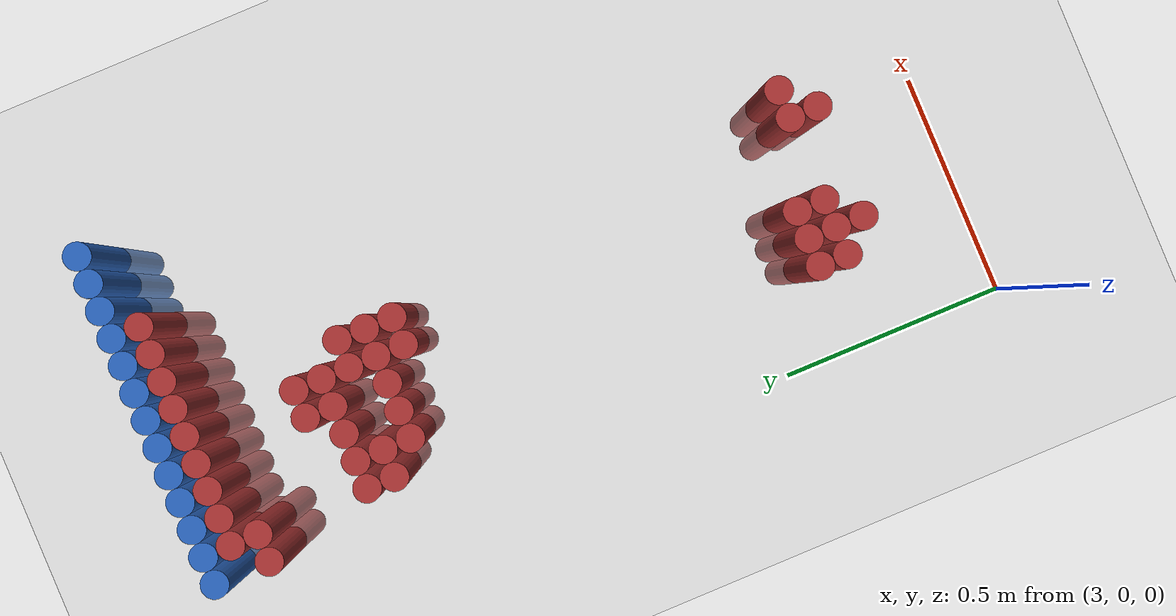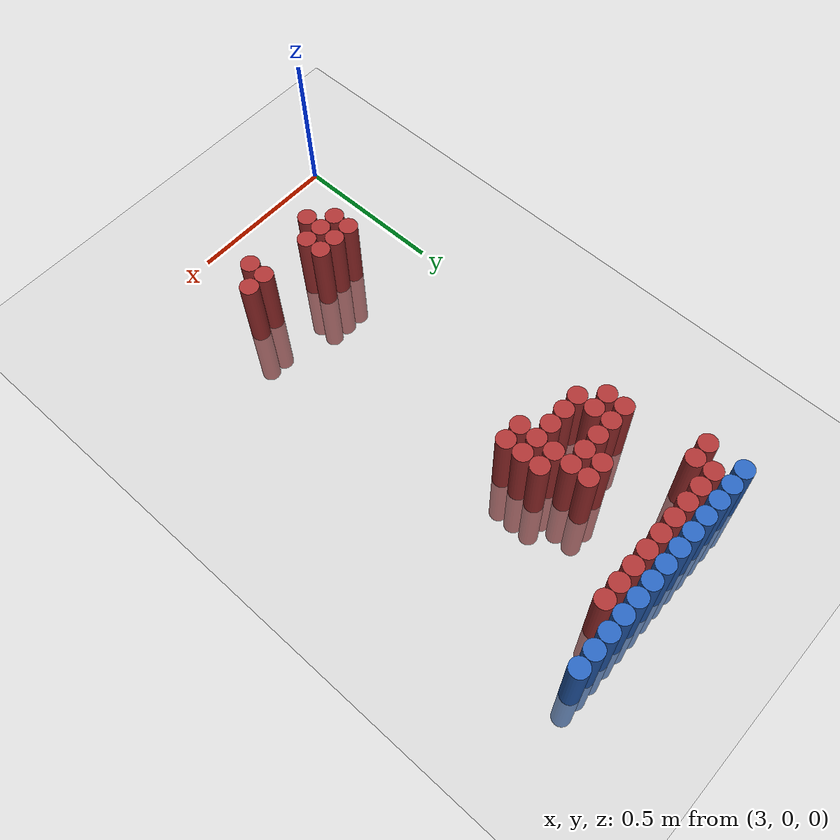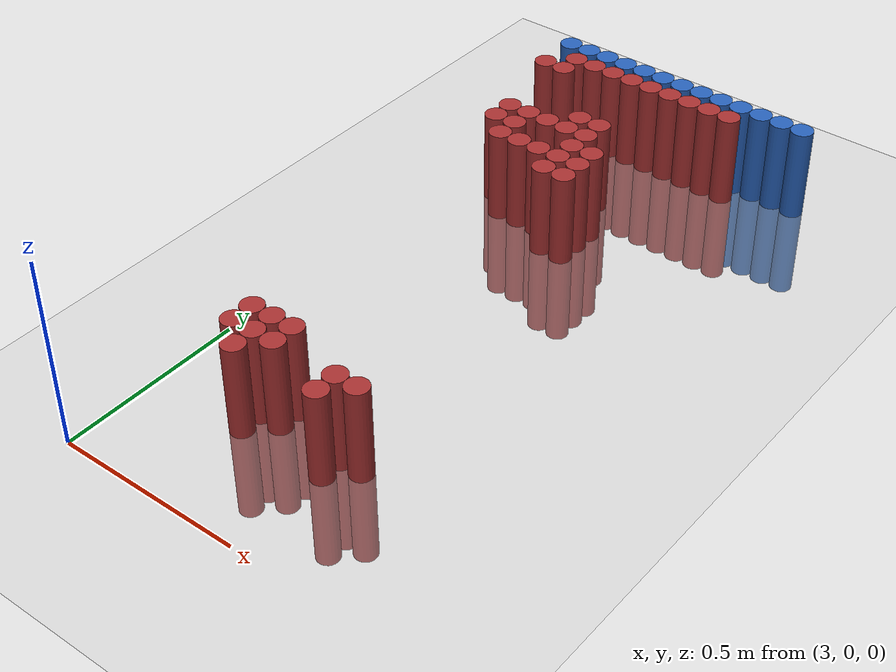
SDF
<sdf version="1.6">
 <world name="default">
  <model name="ground_plane">
   <static>1</static>
   <link name="link">
    <collision name="collision">
     <geometry><plane><normal>0 0 1</normal><size>100 100</size></plane></geometry>
     <surface><friction><ode><mu>100</mu><mu2>50</mu2></ode></friction></surface>
    </collision>
    <visual name="visual">
     <cast_shadows>0</cast_shadows>
     <geometry><plane><normal>0 0 1</normal><size>100 100</size></plane></geometry>
     <material>
      <script><uri>file://media/materials/scripts/gazebo.material</uri><name>Gazebo/Grey</name></script>
     </material>
    </visual>
   </link>
  </model>
  <model name="unit_cylinder_112">
   <static>1</static>
   <pose>3.090000 1.770000 0.000000 0.000000 0.000000 0.000000</pose>
   <link name="link">
    <inertial>
     <mass>1</mass>
     <inertia><ixx>0.145833</ixx><ixy>0</ixy><ixz>0</ixz><iyy>0.145833</iyy><iyz>0</iyz><izz>0.125</izz></inertia>
    </inertial>
    <collision name="collision">
     <geometry><cylinder><radius>0.030000</radius><length>0.5</length></cylinder></geometry>
    </collision>
    <visual name="visual">
     <geometry><cylinder><radius>0.030000</radius><length>0.5</length></cylinder></geometry>
     <material>
      <ambient>0.152000 0.379000 0.720000 1</ambient>
      <diffuse>0.152000 0.379000 0.720000 1</diffuse>
     </material>
     <material>
      <script><name>Gazebo/Grey</name><uri>file://media/materials/scripts/gazebo.material</uri></script>
     </material>
    </visual>
   </link>
  </model>
  <model name="unit_cylinder_113">
   <static>1</static>
   <pose>3.150000 1.770000 0.000000 0.000000 0.000000 0.000000</pose>
   <link name="link">
    <inertial>
     <mass>1</mass>
     <inertia><ixx>0.145833</ixx><ixy>0</ixy><ixz>0</ixz><iyy>0.145833</iyy><iyz>0</iyz><izz>0.125</izz></inertia>
    </inertial>
    <collision name="collision">
     <geometry><cylinder><radius>0.030000</radius><length>0.5</length></cylinder></geometry>
    </collision>
    <visual name="visual">
     <geometry><cylinder><radius>0.030000</radius><length>0.5</length></cylinder></geometry>
     <material>
      <ambient>0.152000 0.379000 0.720000 1</ambient>
      <diffuse>0.152000 0.379000 0.720000 1</diffuse>
     </material>
     <material>
      <script><name>Gazebo/Grey</name><uri>file://media/materials/scripts/gazebo.material</uri></script>
     </material>
    </visual>
   </link>
  </model>
  <model name="unit_cylinder_114">
   <static>1</static>
   <pose>3.210000 1.770000 0.000000 0.000000 0.000000 0.000000</pose>
   <link name="link">
    <inertial>
     <mass>1</mass>
     <inertia><ixx>0.145833</ixx><ixy>0</ixy><ixz>0</ixz><iyy>0.145833</iyy><iyz>0</iyz><izz>0.125</izz></inertia>
    </inertial>
    <collision name="collision">
     <geometry><cylinder><radius>0.030000</radius><length>0.5</length></cylinder></geometry>
    </collision>
    <visual name="visual">
     <geometry><cylinder><radius>0.030000</radius><length>0.5</length></cylinder></geometry>
     <material>
      <ambient>0.152000 0.379000 0.720000 1</ambient>
      <diffuse>0.152000 0.379000 0.720000 1</diffuse>
     </material>
     <material>
      <script><name>Gazebo/Grey</name><uri>file://media/materials/scripts/gazebo.material</uri></script>
     </material>
    </visual>
   </link>
  </model>
  <model name="unit_cylinder_115">
   <static>1</static>
   <pose>3.270000 1.770000 0.000000 0.000000 0.000000 0.000000</pose>
   <link name="link">
    <inertial>
     <mass>1</mass>
     <inertia><ixx>0.145833</ixx><ixy>0</ixy><ixz>0</ixz><iyy>0.145833</iyy><iyz>0</iyz><izz>0.125</izz></inertia>
    </inertial>
    <collision name="collision">
     <geometry><cylinder><radius>0.030000</radius><length>0.5</length></cylinder></geometry>
    </collision>
    <visual name="visual">
     <geometry><cylinder><radius>0.030000</radius><length>0.5</length></cylinder></geometry>
     <material>
      <ambient>0.152000 0.379000 0.720000 1</ambient>
      <diffuse>0.152000 0.379000 0.720000 1</diffuse>
     </material>
     <material>
      <script><name>Gazebo/Grey</name><uri>file://media/materials/scripts/gazebo.material</uri></script>
     </material>
    </visual>
   </link>
  </model>
  <model name="unit_cylinder_116">
   <static>1</static>
   <pose>3.330000 1.770000 0.000000 0.000000 0.000000 0.000000</pose>
   <link name="link">
    <inertial>
     <mass>1</mass>
     <inertia><ixx>0.145833</ixx><ixy>0</ixy><ixz>0</ixz><iyy>0.145833</iyy><iyz>0</iyz><izz>0.125</izz></inertia>
    </inertial>
    <collision name="collision">
     <geometry><cylinder><radius>0.030000</radius><length>0.5</length></cylinder></geometry>
    </collision>
    <visual name="visual">
     <geometry><cylinder><radius>0.030000</radius><length>0.5</length></cylinder></geometry>
     <material>
      <ambient>0.152000 0.379000 0.720000 1</ambient>
      <diffuse>0.152000 0.379000 0.720000 1</diffuse>
     </material>
     <material>
      <script><name>Gazebo/Grey</name><uri>file://media/materials/scripts/gazebo.material</uri></script>
     </material>
    </visual>
   </link>
  </model>
  <model name="unit_cylinder_117">
   <static>1</static>
   <pose>3.390000 1.770000 0.000000 0.000000 0.000000 0.000000</pose>
   <link name="link">
    <inertial>
     <mass>1</mass>
     <inertia><ixx>0.145833</ixx><ixy>0</ixy><ixz>0</ixz><iyy>0.145833</iyy><iyz>0</iyz><izz>0.125</izz></inertia>
    </inertial>
    <collision name="collision">
     <geometry><cylinder><radius>0.030000</radius><length>0.5</length></cylinder></geometry>
    </collision>
    <visual name="visual">
     <geometry><cylinder><radius>0.030000</radius><length>0.5</length></cylinder></geometry>
     <material>
      <ambient>0.152000 0.379000 0.720000 1</ambient>
      <diffuse>0.152000 0.379000 0.720000 1</diffuse>
     </material>
     <material>
      <script><name>Gazebo/Grey</name><uri>file://media/materials/scripts/gazebo.material</uri></script>
     </material>
    </visual>
   </link>
  </model>
  <model name="unit_cylinder_118">
   <static>1</static>
   <pose>3.450000 1.770000 0.000000 0.000000 0.000000 0.000000</pose>
   <link name="link">
    <inertial>
     <mass>1</mass>
     <inertia><ixx>0.145833</ixx><ixy>0</ixy><ixz>0</ixz><iyy>0.145833</iyy><iyz>0</iyz><izz>0.125</izz></inertia>
    </inertial>
    <collision name="collision">
     <geometry><cylinder><radius>0.030000</radius><length>0.5</length></cylinder></geometry>
    </collision>
    <visual name="visual">
     <geometry><cylinder><radius>0.030000</radius><length>0.5</length></cylinder></geometry>
     <material>
      <ambient>0.152000 0.379000 0.720000 1</ambient>
      <diffuse>0.152000 0.379000 0.720000 1</diffuse>
     </material>
     <material>
      <script><name>Gazebo/Grey</name><uri>file://media/materials/scripts/gazebo.material</uri></script>
     </material>
    </visual>
   </link>
  </model>
  <model name="unit_cylinder_119">
   <static>1</static>
   <pose>3.510000 1.770000 0.000000 0.000000 0.000000 0.000000</pose>
   <link name="link">
    <inertial>
     <mass>1</mass>
     <inertia><ixx>0.145833</ixx><ixy>0</ixy><ixz>0</ixz><iyy>0.145833</iyy><iyz>0</iyz><izz>0.125</izz></inertia>
    </inertial>
    <collision name="collision">
     <geometry><cylinder><radius>0.030000</radius><length>0.5</length></cylinder></geometry>
    </collision>
    <visual name="visual">
     <geometry><cylinder><radius>0.030000</radius><length>0.5</length></cylinder></geometry>
     <material>
      <ambient>0.152000 0.379000 0.720000 1</ambient>
      <diffuse>0.152000 0.379000 0.720000 1</diffuse>
     </material>
     <material>
      <script><name>Gazebo/Grey</name><uri>file://media/materials/scripts/gazebo.material</uri></script>
     </material>
    </visual>
   </link>
  </model>
  <model name="unit_cylinder_120">
   <static>1</static>
   <pose>3.570000 1.770000 0.000000 0.000000 0.000000 0.000000</pose>
   <link name="link">
    <inertial>
     <mass>1</mass>
     <inertia><ixx>0.145833</ixx><ixy>0</ixy><ixz>0</ixz><iyy>0.145833</iyy><iyz>0</iyz><izz>0.125</izz></inertia>
    </inertial>
    <collision name="collision">
     <geometry><cylinder><radius>0.030000</radius><length>0.5</length></cylinder></geometry>
    </collision>
    <visual name="visual">
     <geometry><cylinder><radius>0.030000</radius><length>0.5</length></cylinder></geometry>
     <material>
      <ambient>0.152000 0.379000 0.720000 1</ambient>
      <diffuse>0.152000 0.379000 0.720000 1</diffuse>
     </material>
     <material>
      <script><name>Gazebo/Grey</name><uri>file://media/materials/scripts/gazebo.material</uri></script>
     </material>
    </visual>
   </link>
  </model>
  <model name="unit_cylinder_121">
   <static>1</static>
   <pose>3.630000 1.770000 0.000000 0.000000 0.000000 0.000000</pose>
   <link name="link">
    <inertial>
     <mass>1</mass>
     <inertia><ixx>0.145833</ixx><ixy>0</ixy><ixz>0</ixz><iyy>0.145833</iyy><iyz>0</iyz><izz>0.125</izz></inertia>
    </inertial>
    <collision name="collision">
     <geometry><cylinder><radius>0.030000</radius><length>0.5</length></cylinder></geometry>
    </collision>
    <visual name="visual">
     <geometry><cylinder><radius>0.030000</radius><length>0.5</length></cylinder></geometry>
     <material>
      <ambient>0.152000 0.379000 0.720000 1</ambient>
      <diffuse>0.152000 0.379000 0.720000 1</diffuse>
     </material>
     <material>
      <script><name>Gazebo/Grey</name><uri>file://media/materials/scripts/gazebo.material</uri></script>
     </material>
    </visual>
   </link>
  </model>
  <model name="unit_cylinder_122">
   <static>1</static>
   <pose>3.690000 1.770000 0.000000 0.000000 0.000000 0.000000</pose>
   <link name="link">
    <inertial>
     <mass>1</mass>
     <inertia><ixx>0.145833</ixx><ixy>0</ixy><ixz>0</ixz><iyy>0.145833</iyy><iyz>0</iyz><izz>0.125</izz></inertia>
    </inertial>
    <collision name="collision">
     <geometry><cylinder><radius>0.030000</radius><length>0.5</length></cylinder></geometry>
    </collision>
    <visual name="visual">
     <geometry><cylinder><radius>0.030000</radius><length>0.5</length></cylinder></geometry>
     <material>
      <ambient>0.152000 0.379000 0.720000 1</ambient>
      <diffuse>0.152000 0.379000 0.720000 1</diffuse>
     </material>
     <material>
      <script><name>Gazebo/Grey</name><uri>file://media/materials/scripts/gazebo.material</uri></script>
     </material>
    </visual>
   </link>
  </model>
  <model name="unit_cylinder_123">
   <static>1</static>
   <pose>3.750000 1.770000 0.000000 0.000000 0.000000 0.000000</pose>
   <link name="link">
    <inertial>
     <mass>1</mass>
     <inertia><ixx>0.145833</ixx><ixy>0</ixy><ixz>0</ixz><iyy>0.145833</iyy><iyz>0</iyz><izz>0.125</izz></inertia>
    </inertial>
    <collision name="collision">
     <geometry><cylinder><radius>0.030000</radius><length>0.5</length></cylinder></geometry>
    </collision>
    <visual name="visual">
     <geometry><cylinder><radius>0.030000</radius><length>0.5</length></cylinder></geometry>
     <material>
      <ambient>0.152000 0.379000 0.720000 1</ambient>
      <diffuse>0.152000 0.379000 0.720000 1</diffuse>
     </material>
     <material>
      <script><name>Gazebo/Grey</name><uri>file://media/materials/scripts/gazebo.material</uri></script>
     </material>
    </visual>
   </link>
  </model>
  <model name="unit_cylinder_124">
   <static>1</static>
   <pose>3.810000 1.770000 0.000000 0.000000 0.000000 0.000000</pose>
   <link name="link">
    <inertial>
     <mass>1</mass>
     <inertia><ixx>0.145833</ixx><ixy>0</ixy><ixz>0</ixz><iyy>0.145833</iyy><iyz>0</iyz><izz>0.125</izz></inertia>
    </inertial>
    <collision name="collision">
     <geometry><cylinder><radius>0.030000</radius><length>0.5</length></cylinder></geometry>
    </collision>
    <visual name="visual">
     <geometry><cylinder><radius>0.030000</radius><length>0.5</length></cylinder></geometry>
     <material>
      <ambient>0.152000 0.379000 0.720000 1</ambient>
      <diffuse>0.152000 0.379000 0.720000 1</diffuse>
     </material>
     <material>
      <script><name>Gazebo/Grey</name><uri>file://media/materials/scripts/gazebo.material</uri></script>
     </material>
    </visual>
   </link>
  </model>
  <model name="unit_cylinder_133">
   <static>1</static>
   <pose>3.150000 1.710000 0.000000 0.000000 0.000000 0.000000</pose>
   <link name="link">
    <inertial>
     <mass>1</mass>
     <inertia><ixx>0.145833</ixx><ixy>0</ixy><ixz>0</ixz><iyy>0.145833</iyy><iyz>0</iyz><izz>0.125</izz></inertia>
    </inertial>
    <collision name="collision">
     <geometry><cylinder><radius>0.030000</radius><length>0.5</length></cylinder></geometry>
    </collision>
    <visual name="visual">
     <geometry><cylinder><radius>0.030000</radius><length>0.5</length></cylinder></geometry>
     <material>
      <ambient>0.648000 0.192000 0.192000 1</ambient>
      <diffuse>0.648000 0.192000 0.192000 1</diffuse>
     </material>
     <material>
      <script><name>Gazebo/Grey</name><uri>file://media/materials/scripts/gazebo.material</uri></script>
     </material>
    </visual>
   </link>
  </model>
  <model name="unit_cylinder_134">
   <static>1</static>
   <pose>3.210000 1.710000 0.000000 0.000000 0.000000 0.000000</pose>
   <link name="link">
    <inertial>
     <mass>1</mass>
     <inertia><ixx>0.145833</ixx><ixy>0</ixy><ixz>0</ixz><iyy>0.145833</iyy><iyz>0</iyz><izz>0.125</izz></inertia>
    </inertial>
    <collision name="collision">
     <geometry><cylinder><radius>0.030000</radius><length>0.5</length></cylinder></geometry>
    </collision>
    <visual name="visual">
     <geometry><cylinder><radius>0.030000</radius><length>0.5</length></cylinder></geometry>
     <material>
      <ambient>0.648000 0.192000 0.192000 1</ambient>
      <diffuse>0.648000 0.192000 0.192000 1</diffuse>
     </material>
     <material>
      <script><name>Gazebo/Grey</name><uri>file://media/materials/scripts/gazebo.material</uri></script>
     </material>
    </visual>
   </link>
  </model>
  <model name="unit_cylinder_135">
   <static>1</static>
   <pose>3.270000 1.710000 0.000000 0.000000 0.000000 0.000000</pose>
   <link name="link">
    <inertial>
     <mass>1</mass>
     <inertia><ixx>0.145833</ixx><ixy>0</ixy><ixz>0</ixz><iyy>0.145833</iyy><iyz>0</iyz><izz>0.125</izz></inertia>
    </inertial>
    <collision name="collision">
     <geometry><cylinder><radius>0.030000</radius><length>0.5</length></cylinder></geometry>
    </collision>
    <visual name="visual">
     <geometry><cylinder><radius>0.030000</radius><length>0.5</length></cylinder></geometry>
     <material>
      <ambient>0.648000 0.192000 0.192000 1</ambient>
      <diffuse>0.648000 0.192000 0.192000 1</diffuse>
     </material>
     <material>
      <script><name>Gazebo/Grey</name><uri>file://media/materials/scripts/gazebo.material</uri></script>
     </material>
    </visual>
   </link>
  </model>
  <model name="unit_cylinder_136">
   <static>1</static>
   <pose>3.330000 1.710000 0.000000 0.000000 0.000000 0.000000</pose>
   <link name="link">
    <inertial>
     <mass>1</mass>
     <inertia><ixx>0.145833</ixx><ixy>0</ixy><ixz>0</ixz><iyy>0.145833</iyy><iyz>0</iyz><izz>0.125</izz></inertia>
    </inertial>
    <collision name="collision">
     <geometry><cylinder><radius>0.030000</radius><length>0.5</length></cylinder></geometry>
    </collision>
    <visual name="visual">
     <geometry><cylinder><radius>0.030000</radius><length>0.5</length></cylinder></geometry>
     <material>
      <ambient>0.648000 0.192000 0.192000 1</ambient>
      <diffuse>0.648000 0.192000 0.192000 1</diffuse>
     </material>
     <material>
      <script><name>Gazebo/Grey</name><uri>file://media/materials/scripts/gazebo.material</uri></script>
     </material>
    </visual>
   </link>
  </model>
  <model name="unit_cylinder_137">
   <static>1</static>
   <pose>3.390000 1.710000 0.000000 0.000000 0.000000 0.000000</pose>
   <link name="link">
    <inertial>
     <mass>1</mass>
     <inertia><ixx>0.145833</ixx><ixy>0</ixy><ixz>0</ixz><iyy>0.145833</iyy><iyz>0</iyz><izz>0.125</izz></inertia>
    </inertial>
    <collision name="collision">
     <geometry><cylinder><radius>0.030000</radius><length>0.5</length></cylinder></geometry>
    </collision>
    <visual name="visual">
     <geometry><cylinder><radius>0.030000</radius><length>0.5</length></cylinder></geometry>
     <material>
      <ambient>0.648000 0.192000 0.192000 1</ambient>
      <diffuse>0.648000 0.192000 0.192000 1</diffuse>
     </material>
     <material>
      <script><name>Gazebo/Grey</name><uri>file://media/materials/scripts/gazebo.material</uri></script>
     </material>
    </visual>
   </link>
  </model>
  <model name="unit_cylinder_138">
   <static>1</static>
   <pose>3.450000 1.710000 0.000000 0.000000 0.000000 0.000000</pose>
   <link name="link">
    <inertial>
     <mass>1</mass>
     <inertia><ixx>0.145833</ixx><ixy>0</ixy><ixz>0</ixz><iyy>0.145833</iyy><iyz>0</iyz><izz>0.125</izz></inertia>
    </inertial>
    <collision name="collision">
     <geometry><cylinder><radius>0.030000</radius><length>0.5</length></cylinder></geometry>
    </collision>
    <visual name="visual">
     <geometry><cylinder><radius>0.030000</radius><length>0.5</length></cylinder></geometry>
     <material>
      <ambient>0.648000 0.192000 0.192000 1</ambient>
      <diffuse>0.648000 0.192000 0.192000 1</diffuse>
     </material>
     <material>
      <script><name>Gazebo/Grey</name><uri>file://media/materials/scripts/gazebo.material</uri></script>
     </material>
    </visual>
   </link>
  </model>
  <model name="unit_cylinder_139">
   <static>1</static>
   <pose>3.510000 1.710000 0.000000 0.000000 0.000000 0.000000</pose>
   <link name="link">
    <inertial>
     <mass>1</mass>
     <inertia><ixx>0.145833</ixx><ixy>0</ixy><ixz>0</ixz><iyy>0.145833</iyy><iyz>0</iyz><izz>0.125</izz></inertia>
    </inertial>
    <collision name="collision">
     <geometry><cylinder><radius>0.030000</radius><length>0.5</length></cylinder></geometry>
    </collision>
    <visual name="visual">
     <geometry><cylinder><radius>0.030000</radius><length>0.5</length></cylinder></geometry>
     <material>
      <ambient>0.648000 0.192000 0.192000 1</ambient>
      <diffuse>0.648000 0.192000 0.192000 1</diffuse>
     </material>
     <material>
      <script><name>Gazebo/Grey</name><uri>file://media/materials/scripts/gazebo.material</uri></script>
     </material>
    </visual>
   </link>
  </model>
  <model name="unit_cylinder_140">
   <static>1</static>
   <pose>3.570000 1.710000 0.000000 0.000000 0.000000 0.000000</pose>
   <link name="link">
    <inertial>
     <mass>1</mass>
     <inertia><ixx>0.145833</ixx><ixy>0</ixy><ixz>0</ixz><iyy>0.145833</iyy><iyz>0</iyz><izz>0.125</izz></inertia>
    </inertial>
    <collision name="collision">
     <geometry><cylinder><radius>0.030000</radius><length>0.5</length></cylinder></geometry>
    </collision>
    <visual name="visual">
     <geometry><cylinder><radius>0.030000</radius><length>0.5</length></cylinder></geometry>
     <material>
      <ambient>0.648000 0.192000 0.192000 1</ambient>
      <diffuse>0.648000 0.192000 0.192000 1</diffuse>
     </material>
     <material>
      <script><name>Gazebo/Grey</name><uri>file://media/materials/scripts/gazebo.material</uri></script>
     </material>
    </visual>
   </link>
  </model>
  <model name="unit_cylinder_141">
   <static>1</static>
   <pose>3.630000 1.710000 0.000000 0.000000 0.000000 0.000000</pose>
   <link name="link">
    <inertial>
     <mass>1</mass>
     <inertia><ixx>0.145833</ixx><ixy>0</ixy><ixz>0</ixz><iyy>0.145833</iyy><iyz>0</iyz><izz>0.125</izz></inertia>
    </inertial>
    <collision name="collision">
     <geometry><cylinder><radius>0.030000</radius><length>0.5</length></cylinder></geometry>
    </collision>
    <visual name="visual">
     <geometry><cylinder><radius>0.030000</radius><length>0.5</length></cylinder></geometry>
     <material>
      <ambient>0.648000 0.192000 0.192000 1</ambient>
      <diffuse>0.648000 0.192000 0.192000 1</diffuse>
     </material>
     <material>
      <script><name>Gazebo/Grey</name><uri>file://media/materials/scripts/gazebo.material</uri></script>
     </material>
    </visual>
   </link>
  </model>
  <model name="unit_cylinder_146">
   <static>1</static>
   <pose>3.090000 1.650000 0.000000 0.000000 0.000000 0.000000</pose>
   <link name="link">
    <inertial>
     <mass>1</mass>
     <inertia><ixx>0.145833</ixx><ixy>0</ixy><ixz>0</ixz><iyy>0.145833</iyy><iyz>0</iyz><izz>0.125</izz></inertia>
    </inertial>
    <collision name="collision">
     <geometry><cylinder><radius>0.030000</radius><length>0.5</length></cylinder></geometry>
    </collision>
    <visual name="visual">
     <geometry><cylinder><radius>0.030000</radius><length>0.5</length></cylinder></geometry>
     <material>
      <ambient>0.648000 0.192000 0.192000 1</ambient>
      <diffuse>0.648000 0.192000 0.192000 1</diffuse>
     </material>
     <material>
      <script><name>Gazebo/Grey</name><uri>file://media/materials/scripts/gazebo.material</uri></script>
     </material>
    </visual>
   </link>
  </model>
  <model name="unit_cylinder_147">
   <static>1</static>
   <pose>3.150000 1.650000 0.000000 0.000000 0.000000 0.000000</pose>
   <link name="link">
    <inertial>
     <mass>1</mass>
     <inertia><ixx>0.145833</ixx><ixy>0</ixy><ixz>0</ixz><iyy>0.145833</iyy><iyz>0</iyz><izz>0.125</izz></inertia>
    </inertial>
    <collision name="collision">
     <geometry><cylinder><radius>0.030000</radius><length>0.5</length></cylinder></geometry>
    </collision>
    <visual name="visual">
     <geometry><cylinder><radius>0.030000</radius><length>0.5</length></cylinder></geometry>
     <material>
      <ambient>0.648000 0.192000 0.192000 1</ambient>
      <diffuse>0.648000 0.192000 0.192000 1</diffuse>
     </material>
     <material>
      <script><name>Gazebo/Grey</name><uri>file://media/materials/scripts/gazebo.material</uri></script>
     </material>
    </visual>
   </link>
  </model>
  <model name="unit_cylinder_151">
   <static>1</static>
   <pose>3.330000 1.470000 0.000000 0.000000 0.000000 0.000000</pose>
   <link name="link">
    <inertial>
     <mass>1</mass>
     <inertia><ixx>0.145833</ixx><ixy>0</ixy><ixz>0</ixz><iyy>0.145833</iyy><iyz>0</iyz><izz>0.125</izz></inertia>
    </inertial>
    <collision name="collision">
     <geometry><cylinder><radius>0.030000</radius><length>0.5</length></cylinder></geometry>
    </collision>
    <visual name="visual">
     <geometry><cylinder><radius>0.030000</radius><length>0.5</length></cylinder></geometry>
     <material>
      <ambient>0.648000 0.192000 0.192000 1</ambient>
      <diffuse>0.648000 0.192000 0.192000 1</diffuse>
     </material>
     <material>
      <script><name>Gazebo/Grey</name><uri>file://media/materials/scripts/gazebo.material</uri></script>
     </material>
    </visual>
   </link>
  </model>
  <model name="unit_cylinder_152">
   <static>1</static>
   <pose>3.390000 1.470000 0.000000 0.000000 0.000000 0.000000</pose>
   <link name="link">
    <inertial>
     <mass>1</mass>
     <inertia><ixx>0.145833</ixx><ixy>0</ixy><ixz>0</ixz><iyy>0.145833</iyy><iyz>0</iyz><izz>0.125</izz></inertia>
    </inertial>
    <collision name="collision">
     <geometry><cylinder><radius>0.030000</radius><length>0.5</length></cylinder></geometry>
    </collision>
    <visual name="visual">
     <geometry><cylinder><radius>0.030000</radius><length>0.5</length></cylinder></geometry>
     <material>
      <ambient>0.648000 0.192000 0.192000 1</ambient>
      <diffuse>0.648000 0.192000 0.192000 1</diffuse>
     </material>
     <material>
      <script><name>Gazebo/Grey</name><uri>file://media/materials/scripts/gazebo.material</uri></script>
     </material>
    </visual>
   </link>
  </model>
  <model name="unit_cylinder_154">
   <static>1</static>
   <pose>3.150000 1.410000 0.000000 0.000000 0.000000 0.000000</pose>
   <link name="link">
    <inertial>
     <mass>1</mass>
     <inertia><ixx>0.145833</ixx><ixy>0</ixy><ixz>0</ixz><iyy>0.145833</iyy><iyz>0</iyz><izz>0.125</izz></inertia>
    </inertial>
    <collision name="collision">
     <geometry><cylinder><radius>0.030000</radius><length>0.5</length></cylinder></geometry>
    </collision>
    <visual name="visual">
     <geometry><cylinder><radius>0.030000</radius><length>0.5</length></cylinder></geometry>
     <material>
      <ambient>0.648000 0.192000 0.192000 1</ambient>
      <diffuse>0.648000 0.192000 0.192000 1</diffuse>
     </material>
     <material>
      <script><name>Gazebo/Grey</name><uri>file://media/materials/scripts/gazebo.material</uri></script>
     </material>
    </visual>
   </link>
  </model>
  <model name="unit_cylinder_155">
   <static>1</static>
   <pose>3.210000 1.410000 0.000000 0.000000 0.000000 0.000000</pose>
   <link name="link">
    <inertial>
     <mass>1</mass>
     <inertia><ixx>0.145833</ixx><ixy>0</ixy><ixz>0</ixz><iyy>0.145833</iyy><iyz>0</iyz><izz>0.125</izz></inertia>
    </inertial>
    <collision name="collision">
     <geometry><cylinder><radius>0.030000</radius><length>0.5</length></cylinder></geometry>
    </collision>
    <visual name="visual">
     <geometry><cylinder><radius>0.030000</radius><length>0.5</length></cylinder></geometry>
     <material>
      <ambient>0.648000 0.192000 0.192000 1</ambient>
      <diffuse>0.648000 0.192000 0.192000 1</diffuse>
     </material>
     <material>
      <script><name>Gazebo/Grey</name><uri>file://media/materials/scripts/gazebo.material</uri></script>
     </material>
    </visual>
   </link>
  </model>
  <model name="unit_cylinder_156">
   <static>1</static>
   <pose>3.270000 1.410000 0.000000 0.000000 0.000000 0.000000</pose>
   <link name="link">
    <inertial>
     <mass>1</mass>
     <inertia><ixx>0.145833</ixx><ixy>0</ixy><ixz>0</ixz><iyy>0.145833</iyy><iyz>0</iyz><izz>0.125</izz></inertia>
    </inertial>
    <collision name="collision">
     <geometry><cylinder><radius>0.030000</radius><length>0.5</length></cylinder></geometry>
    </collision>
    <visual name="visual">
     <geometry><cylinder><radius>0.030000</radius><length>0.5</length></cylinder></geometry>
     <material>
      <ambient>0.648000 0.192000 0.192000 1</ambient>
      <diffuse>0.648000 0.192000 0.192000 1</diffuse>
     </material>
     <material>
      <script><name>Gazebo/Grey</name><uri>file://media/materials/scripts/gazebo.material</uri></script>
     </material>
    </visual>
   </link>
  </model>
  <model name="unit_cylinder_157">
   <static>1</static>
   <pose>3.330000 1.410000 0.000000 0.000000 0.000000 0.000000</pose>
   <link name="link">
    <inertial>
     <mass>1</mass>
     <inertia><ixx>0.145833</ixx><ixy>0</ixy><ixz>0</ixz><iyy>0.145833</iyy><iyz>0</iyz><izz>0.125</izz></inertia>
    </inertial>
    <collision name="collision">
     <geometry><cylinder><radius>0.030000</radius><length>0.5</length></cylinder></geometry>
    </collision>
    <visual name="visual">
     <geometry><cylinder><radius>0.030000</radius><length>0.5</length></cylinder></geometry>
     <material>
      <ambient>0.648000 0.192000 0.192000 1</ambient>
      <diffuse>0.648000 0.192000 0.192000 1</diffuse>
     </material>
     <material>
      <script><name>Gazebo/Grey</name><uri>file://media/materials/scripts/gazebo.material</uri></script>
     </material>
    </visual>
   </link>
  </model>
  <model name="unit_cylinder_158">
   <static>1</static>
   <pose>3.390000 1.410000 0.000000 0.000000 0.000000 0.000000</pose>
   <link name="link">
    <inertial>
     <mass>1</mass>
     <inertia><ixx>0.145833</ixx><ixy>0</ixy><ixz>0</ixz><iyy>0.145833</iyy><iyz>0</iyz><izz>0.125</izz></inertia>
    </inertial>
    <collision name="collision">
     <geometry><cylinder><radius>0.030000</radius><length>0.5</length></cylinder></geometry>
    </collision>
    <visual name="visual">
     <geometry><cylinder><radius>0.030000</radius><length>0.5</length></cylinder></geometry>
     <material>
      <ambient>0.648000 0.192000 0.192000 1</ambient>
      <diffuse>0.648000 0.192000 0.192000 1</diffuse>
     </material>
     <material>
      <script><name>Gazebo/Grey</name><uri>file://media/materials/scripts/gazebo.material</uri></script>
     </material>
    </visual>
   </link>
  </model>
  <model name="unit_cylinder_159">
   <static>1</static>
   <pose>3.150000 1.350000 0.000000 0.000000 0.000000 0.000000</pose>
   <link name="link">
    <inertial>
     <mass>1</mass>
     <inertia><ixx>0.145833</ixx><ixy>0</ixy><ixz>0</ixz><iyy>0.145833</iyy><iyz>0</iyz><izz>0.125</izz></inertia>
    </inertial>
    <collision name="collision">
     <geometry><cylinder><radius>0.030000</radius><length>0.5</length></cylinder></geometry>
    </collision>
    <visual name="visual">
     <geometry><cylinder><radius>0.030000</radius><length>0.5</length></cylinder></geometry>
     <material>
      <ambient>0.648000 0.192000 0.192000 1</ambient>
      <diffuse>0.648000 0.192000 0.192000 1</diffuse>
     </material>
     <material>
      <script><name>Gazebo/Grey</name><uri>file://media/materials/scripts/gazebo.material</uri></script>
     </material>
    </visual>
   </link>
  </model>
  <model name="unit_cylinder_160">
   <static>1</static>
   <pose>3.210000 1.350000 0.000000 0.000000 0.000000 0.000000</pose>
   <link name="link">
    <inertial>
     <mass>1</mass>
     <inertia><ixx>0.145833</ixx><ixy>0</ixy><ixz>0</ixz><iyy>0.145833</iyy><iyz>0</iyz><izz>0.125</izz></inertia>
    </inertial>
    <collision name="collision">
     <geometry><cylinder><radius>0.030000</radius><length>0.5</length></cylinder></geometry>
    </collision>
    <visual name="visual">
     <geometry><cylinder><radius>0.030000</radius><length>0.5</length></cylinder></geometry>
     <material>
      <ambient>0.648000 0.192000 0.192000 1</ambient>
      <diffuse>0.648000 0.192000 0.192000 1</diffuse>
     </material>
     <material>
      <script><name>Gazebo/Grey</name><uri>file://media/materials/scripts/gazebo.material</uri></script>
     </material>
    </visual>
   </link>
  </model>
  <model name="unit_cylinder_161">
   <static>1</static>
   <pose>3.390000 1.350000 0.000000 0.000000 0.000000 0.000000</pose>
   <link name="link">
    <inertial>
     <mass>1</mass>
     <inertia><ixx>0.145833</ixx><ixy>0</ixy><ixz>0</ixz><iyy>0.145833</iyy><iyz>0</iyz><izz>0.125</izz></inertia>
    </inertial>
    <collision name="collision">
     <geometry><cylinder><radius>0.030000</radius><length>0.5</length></cylinder></geometry>
    </collision>
    <visual name="visual">
     <geometry><cylinder><radius>0.030000</radius><length>0.5</length></cylinder></geometry>
     <material>
      <ambient>0.648000 0.192000 0.192000 1</ambient>
      <diffuse>0.648000 0.192000 0.192000 1</diffuse>
     </material>
     <material>
      <script><name>Gazebo/Grey</name><uri>file://media/materials/scripts/gazebo.material</uri></script>
     </material>
    </visual>
   </link>
  </model>
  <model name="unit_cylinder_162">
   <static>1</static>
   <pose>3.450000 1.350000 0.000000 0.000000 0.000000 0.000000</pose>
   <link name="link">
    <inertial>
     <mass>1</mass>
     <inertia><ixx>0.145833</ixx><ixy>0</ixy><ixz>0</ixz><iyy>0.145833</iyy><iyz>0</iyz><izz>0.125</izz></inertia>
    </inertial>
    <collision name="collision">
     <geometry><cylinder><radius>0.030000</radius><length>0.5</length></cylinder></geometry>
    </collision>
    <visual name="visual">
     <geometry><cylinder><radius>0.030000</radius><length>0.5</length></cylinder></geometry>
     <material>
      <ambient>0.648000 0.192000 0.192000 1</ambient>
      <diffuse>0.648000 0.192000 0.192000 1</diffuse>
     </material>
     <material>
      <script><name>Gazebo/Grey</name><uri>file://media/materials/scripts/gazebo.material</uri></script>
     </material>
    </visual>
   </link>
  </model>
  <model name="unit_cylinder_164">
   <static>1</static>
   <pose>3.210000 1.290000 0.000000 0.000000 0.000000 0.000000</pose>
   <link name="link">
    <inertial>
     <mass>1</mass>
     <inertia><ixx>0.145833</ixx><ixy>0</ixy><ixz>0</ixz><iyy>0.145833</iyy><iyz>0</iyz><izz>0.125</izz></inertia>
    </inertial>
    <collision name="collision">
     <geometry><cylinder><radius>0.030000</radius><length>0.5</length></cylinder></geometry>
    </collision>
    <visual name="visual">
     <geometry><cylinder><radius>0.030000</radius><length>0.5</length></cylinder></geometry>
     <material>
      <ambient>0.648000 0.192000 0.192000 1</ambient>
      <diffuse>0.648000 0.192000 0.192000 1</diffuse>
     </material>
     <material>
      <script><name>Gazebo/Grey</name><uri>file://media/materials/scripts/gazebo.material</uri></script>
     </material>
    </visual>
   </link>
  </model>
  <model name="unit_cylinder_165">
   <static>1</static>
   <pose>3.270000 1.290000 0.000000 0.000000 0.000000 0.000000</pose>
   <link name="link">
    <inertial>
     <mass>1</mass>
     <inertia><ixx>0.145833</ixx><ixy>0</ixy><ixz>0</ixz><iyy>0.145833</iyy><iyz>0</iyz><izz>0.125</izz></inertia>
    </inertial>
    <collision name="collision">
     <geometry><cylinder><radius>0.030000</radius><length>0.5</length></cylinder></geometry>
    </collision>
    <visual name="visual">
     <geometry><cylinder><radius>0.030000</radius><length>0.5</length></cylinder></geometry>
     <material>
      <ambient>0.648000 0.192000 0.192000 1</ambient>
      <diffuse>0.648000 0.192000 0.192000 1</diffuse>
     </material>
     <material>
      <script><name>Gazebo/Grey</name><uri>file://media/materials/scripts/gazebo.material</uri></script>
     </material>
    </visual>
   </link>
  </model>
  <model name="unit_cylinder_166">
   <static>1</static>
   <pose>3.330000 1.290000 0.000000 0.000000 0.000000 0.000000</pose>
   <link name="link">
    <inertial>
     <mass>1</mass>
     <inertia><ixx>0.145833</ixx><ixy>0</ixy><ixz>0</ixz><iyy>0.145833</iyy><iyz>0</iyz><izz>0.125</izz></inertia>
    </inertial>
    <collision name="collision">
     <geometry><cylinder><radius>0.030000</radius><length>0.5</length></cylinder></geometry>
    </collision>
    <visual name="visual">
     <geometry><cylinder><radius>0.030000</radius><length>0.5</length></cylinder></geometry>
     <material>
      <ambient>0.648000 0.192000 0.192000 1</ambient>
      <diffuse>0.648000 0.192000 0.192000 1</diffuse>
     </material>
     <material>
      <script><name>Gazebo/Grey</name><uri>file://media/materials/scripts/gazebo.material</uri></script>
     </material>
    </visual>
   </link>
  </model>
  <model name="unit_cylinder_167">
   <static>1</static>
   <pose>3.390000 1.290000 0.000000 0.000000 0.000000 0.000000</pose>
   <link name="link">
    <inertial>
     <mass>1</mass>
     <inertia><ixx>0.145833</ixx><ixy>0</ixy><ixz>0</ixz><iyy>0.145833</iyy><iyz>0</iyz><izz>0.125</izz></inertia>
    </inertial>
    <collision name="collision">
     <geometry><cylinder><radius>0.030000</radius><length>0.5</length></cylinder></geometry>
    </collision>
    <visual name="visual">
     <geometry><cylinder><radius>0.030000</radius><length>0.5</length></cylinder></geometry>
     <material>
      <ambient>0.648000 0.192000 0.192000 1</ambient>
      <diffuse>0.648000 0.192000 0.192000 1</diffuse>
     </material>
     <material>
      <script><name>Gazebo/Grey</name><uri>file://media/materials/scripts/gazebo.material</uri></script>
     </material>
    </visual>
   </link>
  </model>
  <model name="unit_cylinder_168">
   <static>1</static>
   <pose>3.450000 1.290000 0.000000 0.000000 0.000000 0.000000</pose>
   <link name="link">
    <inertial>
     <mass>1</mass>
     <inertia><ixx>0.145833</ixx><ixy>0</ixy><ixz>0</ixz><iyy>0.145833</iyy><iyz>0</iyz><izz>0.125</izz></inertia>
    </inertial>
    <collision name="collision">
     <geometry><cylinder><radius>0.030000</radius><length>0.5</length></cylinder></geometry>
    </collision>
    <visual name="visual">
     <geometry><cylinder><radius>0.030000</radius><length>0.5</length></cylinder></geometry>
     <material>
      <ambient>0.648000 0.192000 0.192000 1</ambient>
      <diffuse>0.648000 0.192000 0.192000 1</diffuse>
     </material>
     <material>
      <script><name>Gazebo/Grey</name><uri>file://media/materials/scripts/gazebo.material</uri></script>
     </material>
    </visual>
   </link>
  </model>
  <model name="unit_cylinder_171">
   <static>1</static>
   <pose>3.390000 1.230000 0.000000 0.000000 0.000000 0.000000</pose>
   <link name="link">
    <inertial>
     <mass>1</mass>
     <inertia><ixx>0.145833</ixx><ixy>0</ixy><ixz>0</ixz><iyy>0.145833</iyy><iyz>0</iyz><izz>0.125</izz></inertia>
    </inertial>
    <collision name="collision">
     <geometry><cylinder><radius>0.030000</radius><length>0.5</length></cylinder></geometry>
    </collision>
    <visual name="visual">
     <geometry><cylinder><radius>0.030000</radius><length>0.5</length></cylinder></geometry>
     <material>
      <ambient>0.648000 0.192000 0.192000 1</ambient>
      <diffuse>0.648000 0.192000 0.192000 1</diffuse>
     </material>
     <material>
      <script><name>Gazebo/Grey</name><uri>file://media/materials/scripts/gazebo.material</uri></script>
     </material>
    </visual>
   </link>
  </model>
  <model name="unit_cylinder_172">
   <static>1</static>
   <pose>3.450000 1.230000 0.000000 0.000000 0.000000 0.000000</pose>
   <link name="link">
    <inertial>
     <mass>1</mass>
     <inertia><ixx>0.145833</ixx><ixy>0</ixy><ixz>0</ixz><iyy>0.145833</iyy><iyz>0</iyz><izz>0.125</izz></inertia>
    </inertial>
    <collision name="collision">
     <geometry><cylinder><radius>0.030000</radius><length>0.5</length></cylinder></geometry>
    </collision>
    <visual name="visual">
     <geometry><cylinder><radius>0.030000</radius><length>0.5</length></cylinder></geometry>
     <material>
      <ambient>0.648000 0.192000 0.192000 1</ambient>
      <diffuse>0.648000 0.192000 0.192000 1</diffuse>
     </material>
     <material>
      <script><name>Gazebo/Grey</name><uri>file://media/materials/scripts/gazebo.material</uri></script>
     </material>
    </visual>
   </link>
  </model>
  <model name="unit_cylinder_192">
   <static>1</static>
   <pose>3.210000 0.390000 0.000000 0.000000 0.000000 0.000000</pose>
   <link name="link">
    <inertial>
     <mass>1</mass>
     <inertia><ixx>0.145833</ixx><ixy>0</ixy><ixz>0</ixz><iyy>0.145833</iyy><iyz>0</iyz><izz>0.125</izz></inertia>
    </inertial>
    <collision name="collision">
     <geometry><cylinder><radius>0.030000</radius><length>0.5</length></cylinder></geometry>
    </collision>
    <visual name="visual">
     <geometry><cylinder><radius>0.030000</radius><length>0.5</length></cylinder></geometry>
     <material>
      <ambient>0.648000 0.192000 0.192000 1</ambient>
      <diffuse>0.648000 0.192000 0.192000 1</diffuse>
     </material>
     <material>
      <script><name>Gazebo/Grey</name><uri>file://media/materials/scripts/gazebo.material</uri></script>
     </material>
    </visual>
   </link>
  </model>
  <model name="unit_cylinder_193">
   <static>1</static>
   <pose>3.270000 0.390000 0.000000 0.000000 0.000000 0.000000</pose>
   <link name="link">
    <inertial>
     <mass>1</mass>
     <inertia><ixx>0.145833</ixx><ixy>0</ixy><ixz>0</ixz><iyy>0.145833</iyy><iyz>0</iyz><izz>0.125</izz></inertia>
    </inertial>
    <collision name="collision">
     <geometry><cylinder><radius>0.030000</radius><length>0.5</length></cylinder></geometry>
    </collision>
    <visual name="visual">
     <geometry><cylinder><radius>0.030000</radius><length>0.5</length></cylinder></geometry>
     <material>
      <ambient>0.648000 0.192000 0.192000 1</ambient>
      <diffuse>0.648000 0.192000 0.192000 1</diffuse>
     </material>
     <material>
      <script><name>Gazebo/Grey</name><uri>file://media/materials/scripts/gazebo.material</uri></script>
     </material>
    </visual>
   </link>
  </model>
  <model name="unit_cylinder_194">
   <static>1</static>
   <pose>3.330000 0.390000 0.000000 0.000000 0.000000 0.000000</pose>
   <link name="link">
    <inertial>
     <mass>1</mass>
     <inertia><ixx>0.145833</ixx><ixy>0</ixy><ixz>0</ixz><iyy>0.145833</iyy><iyz>0</iyz><izz>0.125</izz></inertia>
    </inertial>
    <collision name="collision">
     <geometry><cylinder><radius>0.030000</radius><length>0.5</length></cylinder></geometry>
    </collision>
    <visual name="visual">
     <geometry><cylinder><radius>0.030000</radius><length>0.5</length></cylinder></geometry>
     <material>
      <ambient>0.648000 0.192000 0.192000 1</ambient>
      <diffuse>0.648000 0.192000 0.192000 1</diffuse>
     </material>
     <material>
      <script><name>Gazebo/Grey</name><uri>file://media/materials/scripts/gazebo.material</uri></script>
     </material>
    </visual>
   </link>
  </model>
  <model name="unit_cylinder_195">
   <static>1</static>
   <pose>3.210000 0.330000 0.000000 0.000000 0.000000 0.000000</pose>
   <link name="link">
    <inertial>
     <mass>1</mass>
     <inertia><ixx>0.145833</ixx><ixy>0</ixy><ixz>0</ixz><iyy>0.145833</iyy><iyz>0</iyz><izz>0.125</izz></inertia>
    </inertial>
    <collision name="collision">
     <geometry><cylinder><radius>0.030000</radius><length>0.5</length></cylinder></geometry>
    </collision>
    <visual name="visual">
     <geometry><cylinder><radius>0.030000</radius><length>0.5</length></cylinder></geometry>
     <material>
      <ambient>0.648000 0.192000 0.192000 1</ambient>
      <diffuse>0.648000 0.192000 0.192000 1</diffuse>
     </material>
     <material>
      <script><name>Gazebo/Grey</name><uri>file://media/materials/scripts/gazebo.material</uri></script>
     </material>
    </visual>
   </link>
  </model>
  <model name="unit_cylinder_196">
   <static>1</static>
   <pose>3.270000 0.330000 0.000000 0.000000 0.000000 0.000000</pose>
   <link name="link">
    <inertial>
     <mass>1</mass>
     <inertia><ixx>0.145833</ixx><ixy>0</ixy><ixz>0</ixz><iyy>0.145833</iyy><iyz>0</iyz><izz>0.125</izz></inertia>
    </inertial>
    <collision name="collision">
     <geometry><cylinder><radius>0.030000</radius><length>0.5</length></cylinder></geometry>
    </collision>
    <visual name="visual">
     <geometry><cylinder><radius>0.030000</radius><length>0.5</length></cylinder></geometry>
     <material>
      <ambient>0.648000 0.192000 0.192000 1</ambient>
      <diffuse>0.648000 0.192000 0.192000 1</diffuse>
     </material>
     <material>
      <script><name>Gazebo/Grey</name><uri>file://media/materials/scripts/gazebo.material</uri></script>
     </material>
    </visual>
   </link>
  </model>
  <model name="unit_cylinder_197">
   <static>1</static>
   <pose>3.330000 0.330000 0.000000 0.000000 0.000000 0.000000</pose>
   <link name="link">
    <inertial>
     <mass>1</mass>
     <inertia><ixx>0.145833</ixx><ixy>0</ixy><ixz>0</ixz><iyy>0.145833</iyy><iyz>0</iyz><izz>0.125</izz></inertia>
    </inertial>
    <collision name="collision">
     <geometry><cylinder><radius>0.030000</radius><length>0.5</length></cylinder></geometry>
    </collision>
    <visual name="visual">
     <geometry><cylinder><radius>0.030000</radius><length>0.5</length></cylinder></geometry>
     <material>
      <ambient>0.648000 0.192000 0.192000 1</ambient>
      <diffuse>0.648000 0.192000 0.192000 1</diffuse>
     </material>
     <material>
      <script><name>Gazebo/Grey</name><uri>file://media/materials/scripts/gazebo.material</uri></script>
     </material>
    </visual>
   </link>
  </model>
  <model name="unit_cylinder_198">
   <static>1</static>
   <pose>3.510000 0.330000 0.000000 0.000000 0.000000 0.000000</pose>
   <link name="link">
    <inertial>
     <mass>1</mass>
     <inertia><ixx>0.145833</ixx><ixy>0</ixy><ixz>0</ixz><iyy>0.145833</iyy><iyz>0</iyz><izz>0.125</izz></inertia>
    </inertial>
    <collision name="collision">
     <geometry><cylinder><radius>0.030000</radius><length>0.5</length></cylinder></geometry>
    </collision>
    <visual name="visual">
     <geometry><cylinder><radius>0.030000</radius><length>0.5</length></cylinder></geometry>
     <material>
      <ambient>0.648000 0.192000 0.192000 1</ambient>
      <diffuse>0.648000 0.192000 0.192000 1</diffuse>
     </material>
     <material>
      <script><name>Gazebo/Grey</name><uri>file://media/materials/scripts/gazebo.material</uri></script>
     </material>
    </visual>
   </link>
  </model>
  <model name="unit_cylinder_199">
   <static>1</static>
   <pose>3.570000 0.330000 0.000000 0.000000 0.000000 0.000000</pose>
   <link name="link">
    <inertial>
     <mass>1</mass>
     <inertia><ixx>0.145833</ixx><ixy>0</ixy><ixz>0</ixz><iyy>0.145833</iyy><iyz>0</iyz><izz>0.125</izz></inertia>
    </inertial>
    <collision name="collision">
     <geometry><cylinder><radius>0.030000</radius><length>0.5</length></cylinder></geometry>
    </collision>
    <visual name="visual">
     <geometry><cylinder><radius>0.030000</radius><length>0.5</length></cylinder></geometry>
     <material>
      <ambient>0.648000 0.192000 0.192000 1</ambient>
      <diffuse>0.648000 0.192000 0.192000 1</diffuse>
     </material>
     <material>
      <script><name>Gazebo/Grey</name><uri>file://media/materials/scripts/gazebo.material</uri></script>
     </material>
    </visual>
   </link>
  </model>
  <model name="unit_cylinder_201">
   <static>1</static>
   <pose>3.270000 0.270000 0.000000 0.000000 0.000000 0.000000</pose>
   <link name="link">
    <inertial>
     <mass>1</mass>
     <inertia><ixx>0.145833</ixx><ixy>0</ixy><ixz>0</ixz><iyy>0.145833</iyy><iyz>0</iyz><izz>0.125</izz></inertia>
    </inertial>
    <collision name="collision">
     <geometry><cylinder><radius>0.030000</radius><length>0.5</length></cylinder></geometry>
    </collision>
    <visual name="visual">
     <geometry><cylinder><radius>0.030000</radius><length>0.5</length></cylinder></geometry>
     <material>
      <ambient>0.648000 0.192000 0.192000 1</ambient>
      <diffuse>0.648000 0.192000 0.192000 1</diffuse>
     </material>
     <material>
      <script><name>Gazebo/Grey</name><uri>file://media/materials/scripts/gazebo.material</uri></script>
     </material>
    </visual>
   </link>
  </model>
  <model name="unit_cylinder_202">
   <static>1</static>
   <pose>3.510000 0.270000 0.000000 0.000000 0.000000 0.000000</pose>
   <link name="link">
    <inertial>
     <mass>1</mass>
     <inertia><ixx>0.145833</ixx><ixy>0</ixy><ixz>0</ixz><iyy>0.145833</iyy><iyz>0</iyz><izz>0.125</izz></inertia>
    </inertial>
    <collision name="collision">
     <geometry><cylinder><radius>0.030000</radius><length>0.5</length></cylinder></geometry>
    </collision>
    <visual name="visual">
     <geometry><cylinder><radius>0.030000</radius><length>0.5</length></cylinder></geometry>
     <material>
      <ambient>0.648000 0.192000 0.192000 1</ambient>
      <diffuse>0.648000 0.192000 0.192000 1</diffuse>
     </material>
     <material>
      <script><name>Gazebo/Grey</name><uri>file://media/materials/scripts/gazebo.material</uri></script>
     </material>
    </visual>
   </link>
  </model>
 </world>
</sdf>
